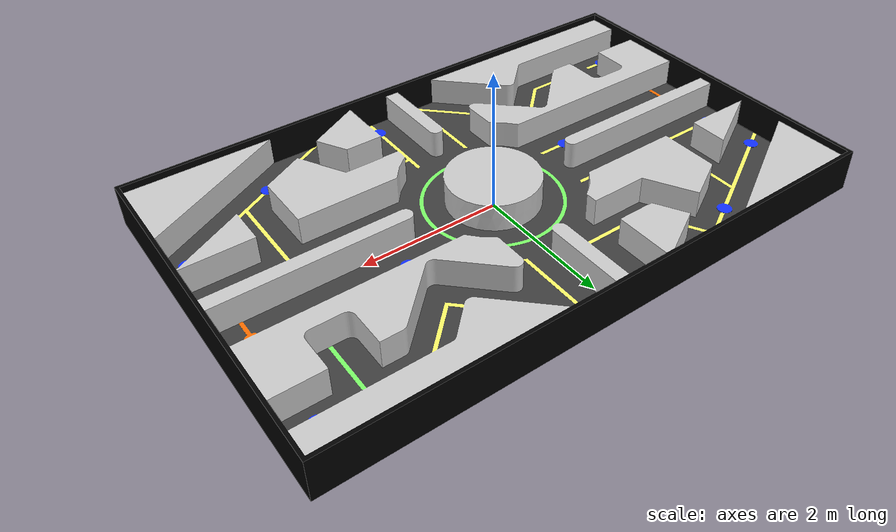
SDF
<?xml version='1.0'?>
<sdf version='1.4'>
  <model name="hard_track">
    <link name="link">
      <collision name="collision">
        <geometry>
          <mesh>
            <uri>file://playroom_v2/meshes/collision_wall.stl</uri>
            <scale>0.001 0.001 0.001</scale>
          </mesh>
        </geometry>
      </collision>
      <visual name="visual">
        <geometry>
          <mesh>
            <uri>file://playroom_v2/meshes/visual_v5.dae</uri>
          </mesh>
        </geometry>
      </visual>
    </link>
    <static>1</static>
  </model>
</sdf>
